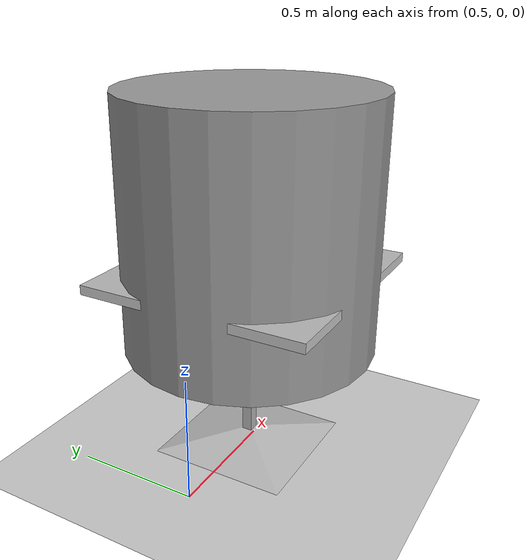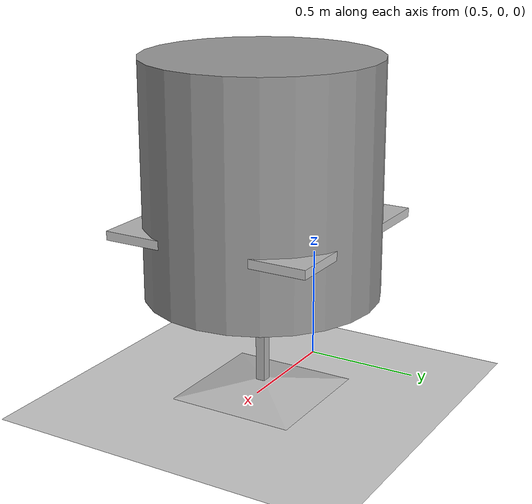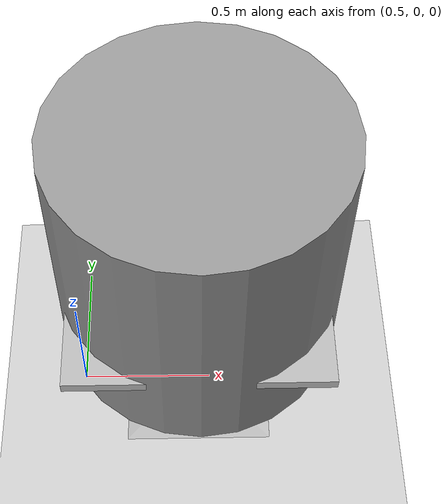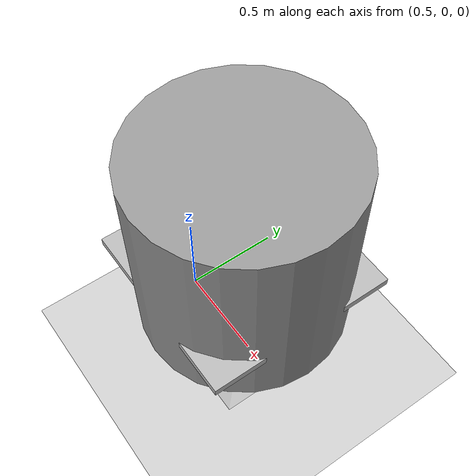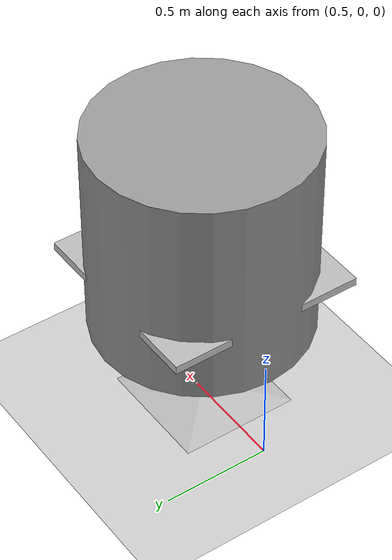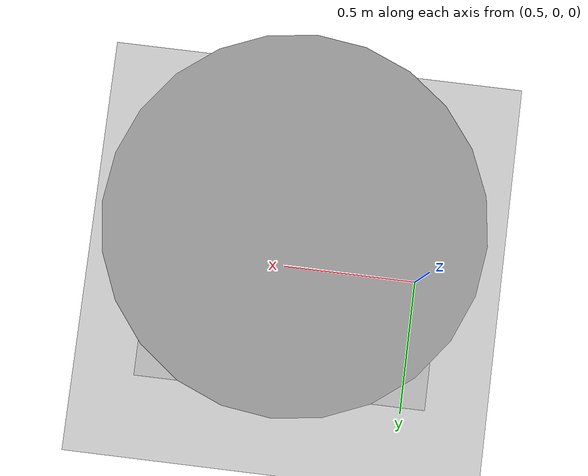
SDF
<sdf version="1.6">
 <world name="default">
  <light name="sun" type="directional">
   <pose>0 0 10 0 -0 0</pose>
   <diffuse>0.8 0.8 0.8 1</diffuse>
   <specular>0.1 0.1 0.1 1</specular>
   <attenuation>
    <range>1000</range>
    <constant>0.9</constant>
    <linear>0.01</linear>
    <quadratic>0.001</quadratic>
   </attenuation>
   <direction>-0.5 0.5 -1</direction>
  </light>
  <model name="ground_plane">
   <static>1</static>
   <link name="link">
    <collision name="collision">
     <geometry><plane><normal>0 0 1</normal><size>100 100</size></plane></geometry>
     <surface><friction><ode><mu>100</mu><mu2>50</mu2></ode></friction></surface>
    </collision>
    <visual name="visual">
     <cast_shadows>0</cast_shadows>
     <geometry><plane><normal>0 0 1</normal><size>100 100</size></plane></geometry>
     <material>
      <script><uri>file://media/materials/scripts/gazebo.material</uri><name>Gazebo/Grey</name></script>
     </material>
    </visual>
   </link>
  </model>
  <gravity>0 0 -9.8</gravity>
  <magnetic_field>6e-06 2.3e-05 -4.2e-05</magnetic_field>
  <atmosphere type="adiabatic"/>
  <physics name="default_physics" default="0" type="ode">
   <max_step_size>0.001</max_step_size>
   <real_time_factor>1</real_time_factor>
   <real_time_update_rate>1000</real_time_update_rate>
  </physics>
  <scene><ambient>0.4 0.4 0.4 1</ambient><background>0.7 0.7 0.7 1</background><shadows>1</shadows></scene>
  <spherical_coordinates>
   <surface_model>EARTH_WGS84</surface_model>
   <latitude_deg>0</latitude_deg>
   <longitude_deg>0</longitude_deg>
   <elevation>0</elevation>
   <heading_deg>0</heading_deg>
  </spherical_coordinates>
  <model name="cafe_table">
   <static>1</static>
   <link name="link">
    <collision name="surface">
     <pose>0 0 0.755 0 -0 0</pose>
     <geometry><box><size>0.913 0.913 0.04</size></box></geometry>
    </collision>
    <collision name="column">
     <pose>0 0 0.37 0 -0 0</pose>
     <geometry><box><size>0.042 0.042 0.74</size></box></geometry>
    </collision>
    <collision name="base">
     <pose>0 0 0.02 0 -0 0</pose>
     <geometry><box><size>0.56 0.56 0.04</size></box></geometry>
    </collision>
    <visual name="visual">
     <geometry><mesh><uri>model://cafe_table/meshes/cafe_table.dae</uri><scale>1 1 1</scale></mesh></geometry>
    </visual>
   </link>
   <pose>0.954374 -0.002127 0 0 -0 0</pose>
  </model>
  <model name="unit_cylinder_0">
   <pose>0.960553 0.001939 0.960083 7.2e-05 -7e-05 0.000167</pose>
   <link name="link">
    <inertial>
     <mass>1</mass>
     <inertia><ixx>0.145833</ixx><ixy>0</ixy><ixz>0</ixz><iyy>0.145833</iyy><iyz>0</iyz><izz>0.125</izz></inertia>
    </inertial>
    <collision name="collision">
     <geometry><cylinder><radius>0.5</radius><length>0.999999</length></cylinder></geometry>
    </collision>
    <visual name="visual">
     <geometry><cylinder><radius>0.5</radius><length>0.999999</length></cylinder></geometry>
     <material>
      <script><name>Gazebo/Grey</name><uri>file://media/materials/scripts/gazebo.material</uri></script>
     </material>
    </visual>
   </link>
  </model>
 </world>
</sdf>
